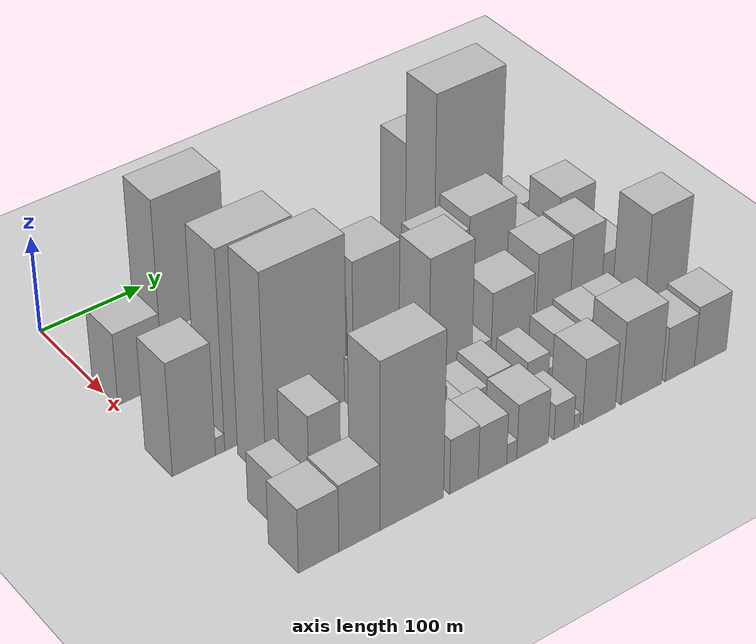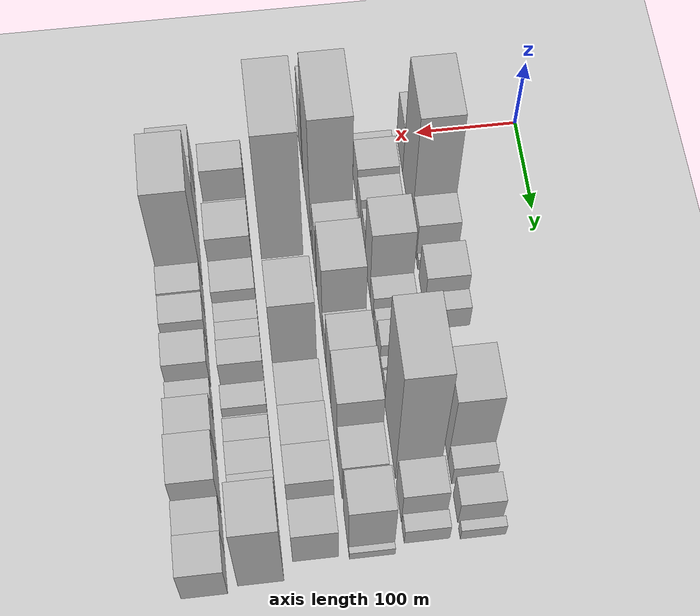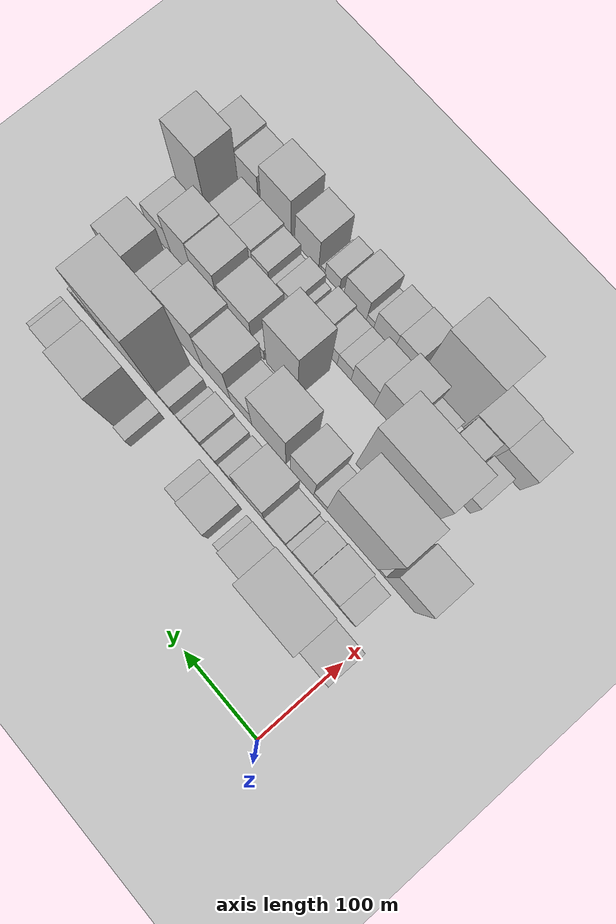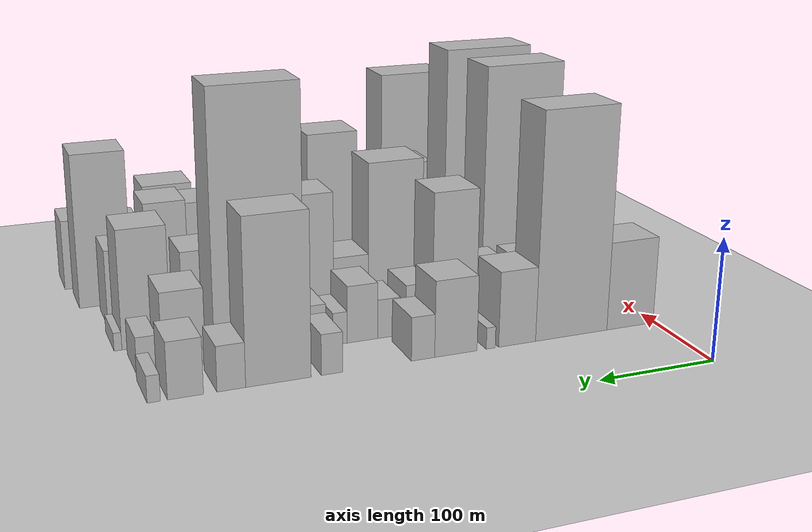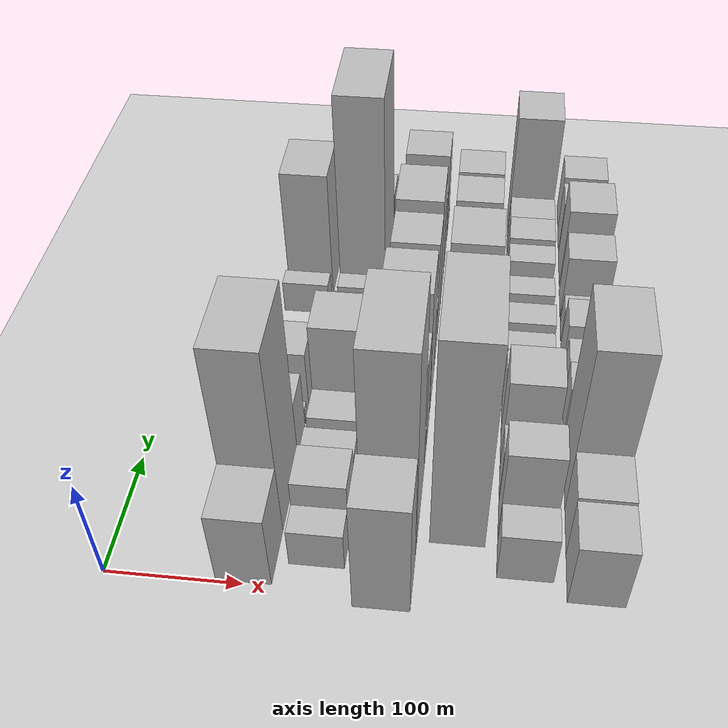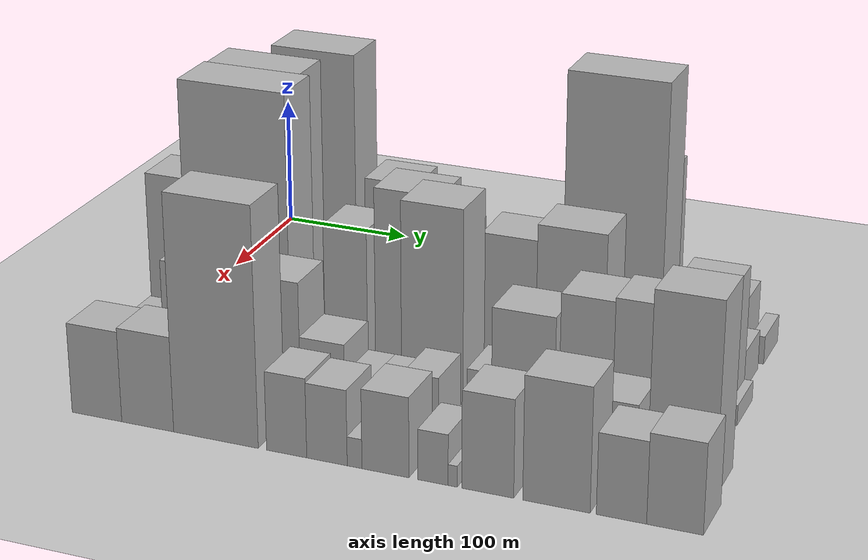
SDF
<sdf version="1.6">
 <world name="default">
  <include>
   <name>ground_plane_2</name>
   <uri>model://HANNAS_ground_plane</uri>
   <pose>100 0 0  0 0 0</pose>
  </include>
  <model name="building_25">
   <static>1</static>
   <pose>100.0000 23.4848 0 0.000000 0.000000 0.000000</pose>
   <link name="link">
    <pose>0 0 37.50 0 0 0</pose>
    <collision name="collision"><geometry><box><size>40.0000 43.8097 75.0000</size></box></geometry></collision>
    <visual name="visual">
     <cast_shadows>0</cast_shadows>
     <geometry><box><size>40.0000 43.8097 75.0000</size></box></geometry>
     <material>
      <script>
       <uri>model://HANNAS_wall/materials/scripts</uri>
       <uri>model://HANNAS_wall/materials/textures</uri>
       <name>vrc/HANNAS_wall</name>
      </script>
     </material>
    </visual>
   </link>
  </model>
  <model name="building_26">
   <static>1</static>
   <pose>100.0000 78.0372 0 0.000000 0.000000 0.000000</pose>
   <link name="link">
    <pose>0 0 94.50 0 0 0</pose>
    <collision name="collision"><geometry><box><size>40.0000 65.2951 189.0000</size></box></geometry></collision>
    <visual name="visual">
     <cast_shadows>0</cast_shadows>
     <geometry><box><size>40.0000 65.2951 189.0000</size></box></geometry>
     <material>
      <script>
       <uri>model://HANNAS_wall/materials/scripts</uri>
       <uri>model://HANNAS_wall/materials/textures</uri>
       <name>vrc/HANNAS_wall</name>
      </script>
     </material>
    </visual>
   </link>
  </model>
  <model name="building_27">
   <static>1</static>
   <pose>100.0000 127.0453 0 0.000000 0.000000 0.000000</pose>
   <link name="link">
    <pose>0 0 31.50 0 0 0</pose>
    <collision name="collision"><geometry><box><size>40.0000 32.7209 63.0000</size></box></geometry></collision>
    <visual name="visual">
     <cast_shadows>0</cast_shadows>
     <geometry><box><size>40.0000 32.7209 63.0000</size></box></geometry>
     <material>
      <script>
       <uri>model://HANNAS_wall/materials/scripts</uri>
       <uri>model://HANNAS_wall/materials/textures</uri>
       <name>vrc/HANNAS_wall</name>
      </script>
     </material>
    </visual>
   </link>
  </model>
  <model name="building_28">
   <static>1</static>
   <pose>100.0000 150.3238 0 0.000000 0.000000 0.000000</pose>
   <link name="link">
    <pose>0 0 9.00 0 0 0</pose>
    <collision name="collision"><geometry><box><size>40.0000 7.8362 18.0000</size></box></geometry></collision>
    <visual name="visual">
     <cast_shadows>0</cast_shadows>
     <geometry><box><size>40.0000 7.8362 18.0000</size></box></geometry>
     <material>
      <script>
       <uri>model://HANNAS_wall/materials/scripts</uri>
       <uri>model://HANNAS_wall/materials/textures</uri>
       <name>vrc/HANNAS_wall</name>
      </script>
     </material>
    </visual>
   </link>
  </model>
  <model name="building_29">
   <static>1</static>
   <pose>100.0000 180.3429 0 0.000000 0.000000 0.000000</pose>
   <link name="link">
    <pose>0 0 31.50 0 0 0</pose>
    <collision name="collision"><geometry><box><size>40.0000 36.2020 63.0000</size></box></geometry></collision>
    <visual name="visual">
     <cast_shadows>0</cast_shadows>
     <geometry><box><size>40.0000 36.2020 63.0000</size></box></geometry>
     <material>
      <script>
       <uri>model://HANNAS_wall/materials/scripts</uri>
       <uri>model://HANNAS_wall/materials/textures</uri>
       <name>vrc/HANNAS_wall</name>
      </script>
     </material>
    </visual>
   </link>
  </model>
  <model name="building_30">
   <static>1</static>
   <pose>100.0000 208.2000 0 0.000000 0.000000 0.000000</pose>
   <link name="link">
    <pose>0 0 18.00 0 0 0</pose>
    <collision name="collision"><geometry><box><size>40.0000 19.5122 36.0000</size></box></geometry></collision>
    <visual name="visual">
     <cast_shadows>0</cast_shadows>
     <geometry><box><size>40.0000 19.5122 36.0000</size></box></geometry>
     <material>
      <script>
       <uri>model://HANNAS_wall/materials/scripts</uri>
       <uri>model://HANNAS_wall/materials/textures</uri>
       <name>vrc/HANNAS_wall</name>
      </script>
     </material>
    </visual>
   </link>
  </model>
  <model name="building_31">
   <static>1</static>
   <pose>100.0000 282.5096 0 0.000000 0.000000 0.000000</pose>
   <link name="link">
    <pose>0 0 16.50 0 0 0</pose>
    <collision name="collision"><geometry><box><size>40.0000 17.0357 33.0000</size></box></geometry></collision>
    <visual name="visual">
     <cast_shadows>0</cast_shadows>
     <geometry><box><size>40.0000 17.0357 33.0000</size></box></geometry>
     <material>
      <script>
       <uri>model://HANNAS_wall/materials/scripts</uri>
       <uri>model://HANNAS_wall/materials/textures</uri>
       <name>vrc/HANNAS_wall</name>
      </script>
     </material>
    </visual>
   </link>
  </model>
  <model name="building_32">
   <static>1</static>
   <pose>100.0000 324.3097 0 0.000000 0.000000 0.000000</pose>
   <link name="link">
    <pose>0 0 66.00 0 0 0</pose>
    <collision name="collision"><geometry><box><size>40.0000 50.5646 132.0000</size></box></geometry></collision>
    <visual name="visual">
     <cast_shadows>0</cast_shadows>
     <geometry><box><size>40.0000 50.5646 132.0000</size></box></geometry>
     <material>
      <script>
       <uri>model://HANNAS_wall/materials/scripts</uri>
       <uri>model://HANNAS_wall/materials/textures</uri>
       <name>vrc/HANNAS_wall</name>
      </script>
     </material>
    </visual>
   </link>
  </model>
  <model name="building_33">
   <static>1</static>
   <pose>100.0000 360.3761 0 0.000000 0.000000 0.000000</pose>
   <link name="link">
    <pose>0 0 18.00 0 0 0</pose>
    <collision name="collision"><geometry><box><size>40.0000 21.5682 36.0000</size></box></geometry></collision>
    <visual name="visual">
     <cast_shadows>0</cast_shadows>
     <geometry><box><size>40.0000 21.5682 36.0000</size></box></geometry>
     <material>
      <script>
       <uri>model://HANNAS_wall/materials/scripts</uri>
       <uri>model://HANNAS_wall/materials/textures</uri>
       <name>vrc/HANNAS_wall</name>
      </script>
     </material>
    </visual>
   </link>
  </model>
  <model name="building_34">
   <static>1</static>
   <pose>100.0000 394.4054 0 0.000000 0.000000 0.000000</pose>
   <link name="link">
    <pose>0 0 22.50 0 0 0</pose>
    <collision name="collision"><geometry><box><size>40.0000 26.4903 45.0000</size></box></geometry></collision>
    <visual name="visual">
     <cast_shadows>0</cast_shadows>
     <geometry><box><size>40.0000 26.4903 45.0000</size></box></geometry>
     <material>
      <script>
       <uri>model://HANNAS_wall/materials/scripts</uri>
       <uri>model://HANNAS_wall/materials/textures</uri>
       <name>vrc/HANNAS_wall</name>
      </script>
     </material>
    </visual>
   </link>
  </model>
  <model name="building_35">
   <static>1</static>
   <pose>100.0000 417.4979 0 0.000000 0.000000 0.000000</pose>
   <link name="link">
    <pose>0 0 10.50 0 0 0</pose>
    <collision name="collision"><geometry><box><size>40.0000 9.6946 21.0000</size></box></geometry></collision>
    <visual name="visual">
     <cast_shadows>0</cast_shadows>
     <geometry><box><size>40.0000 9.6946 21.0000</size></box></geometry>
     <material>
      <script>
       <uri>model://HANNAS_wall/materials/scripts</uri>
       <uri>model://HANNAS_wall/materials/textures</uri>
       <name>vrc/HANNAS_wall</name>
      </script>
     </material>
    </visual>
   </link>
  </model>
  <model name="building_70">
   <static>1</static>
   <pose>149.0000 30.7093 0 0.000000 0.000000 0.000000</pose>
   <link name="link">
    <pose>0 0 19.50 0 0 0</pose>
    <collision name="collision"><geometry><box><size>40.0000 23.0490 39.0000</size></box></geometry></collision>
    <visual name="visual">
     <cast_shadows>0</cast_shadows>
     <geometry><box><size>40.0000 23.0490 39.0000</size></box></geometry>
     <material>
      <script>
       <uri>model://HANNAS_wall/materials/scripts</uri>
       <uri>model://HANNAS_wall/materials/textures</uri>
       <name>vrc/HANNAS_wall</name>
      </script>
     </material>
    </visual>
   </link>
  </model>
  <model name="building_71">
   <static>1</static>
   <pose>149.0000 59.3731 0 0.000000 0.000000 0.000000</pose>
   <link name="link">
    <pose>0 0 31.50 0 0 0</pose>
    <collision name="collision"><geometry><box><size>40.0000 34.2786 63.0000</size></box></geometry></collision>
    <visual name="visual">
     <cast_shadows>0</cast_shadows>
     <geometry><box><size>40.0000 34.2786 63.0000</size></box></geometry>
     <material>
      <script>
       <uri>model://HANNAS_wall/materials/scripts</uri>
       <uri>model://HANNAS_wall/materials/textures</uri>
       <name>vrc/HANNAS_wall</name>
      </script>
     </material>
    </visual>
   </link>
  </model>
  <model name="building_72">
   <static>1</static>
   <pose>149.0000 89.5207 0 0.000000 0.000000 0.000000</pose>
   <link name="link">
    <pose>0 0 25.50 0 0 0</pose>
    <collision name="collision"><geometry><box><size>40.0000 26.0166 51.0000</size></box></geometry></collision>
    <visual name="visual">
     <cast_shadows>0</cast_shadows>
     <geometry><box><size>40.0000 26.0166 51.0000</size></box></geometry>
     <material>
      <script>
       <uri>model://HANNAS_wall/materials/scripts</uri>
       <uri>model://HANNAS_wall/materials/textures</uri>
       <name>vrc/HANNAS_wall</name>
      </script>
     </material>
    </visual>
   </link>
  </model>
  <model name="building_73">
   <static>1</static>
   <pose>149.0000 106.8349 0 0.000000 0.000000 0.000000</pose>
   <link name="link">
    <pose>0 0 10.50 0 0 0</pose>
    <collision name="collision"><geometry><box><size>40.0000 8.6117 21.0000</size></box></geometry></collision>
    <visual name="visual">
     <cast_shadows>0</cast_shadows>
     <geometry><box><size>40.0000 8.6117 21.0000</size></box></geometry>
     <material>
      <script>
       <uri>model://HANNAS_wall/materials/scripts</uri>
       <uri>model://HANNAS_wall/materials/textures</uri>
       <name>vrc/HANNAS_wall</name>
      </script>
     </material>
    </visual>
   </link>
  </model>
  <model name="building_74">
   <static>1</static>
   <pose>149.0000 125.4040 0 0.000000 0.000000 0.000000</pose>
   <link name="link">
    <pose>0 0 25.50 0 0 0</pose>
    <collision name="collision"><geometry><box><size>40.0000 28.5265 51.0000</size></box></geometry></collision>
    <visual name="visual">
     <cast_shadows>0</cast_shadows>
     <geometry><box><size>40.0000 28.5265 51.0000</size></box></geometry>
     <material>
      <script>
       <uri>model://HANNAS_wall/materials/scripts</uri>
       <uri>model://HANNAS_wall/materials/textures</uri>
       <name>vrc/HANNAS_wall</name>
      </script>
     </material>
    </visual>
   </link>
  </model>
  <model name="building_75">
   <static>1</static>
   <pose>149.0000 159.4169 0 0.000000 0.000000 0.000000</pose>
   <link name="link">
    <pose>0 0 58.50 0 0 0</pose>
    <collision name="collision"><geometry><box><size>40.0000 39.4994 117.0000</size></box></geometry></collision>
    <visual name="visual">
     <cast_shadows>0</cast_shadows>
     <geometry><box><size>40.0000 39.4994 117.0000</size></box></geometry>
     <material>
      <script>
       <uri>model://HANNAS_wall/materials/scripts</uri>
       <uri>model://HANNAS_wall/materials/textures</uri>
       <name>vrc/HANNAS_wall</name>
      </script>
     </material>
    </visual>
   </link>
  </model>
  <model name="building_76">
   <static>1</static>
   <pose>149.0000 190.7859 0 0.000000 0.000000 0.000000</pose>
   <link name="link">
    <pose>0 0 21.00 0 0 0</pose>
    <collision name="collision"><geometry><box><size>40.0000 23.2386 42.0000</size></box></geometry></collision>
    <visual name="visual">
     <cast_shadows>0</cast_shadows>
     <geometry><box><size>40.0000 23.2386 42.0000</size></box></geometry>
     <material>
      <script>
       <uri>model://HANNAS_wall/materials/scripts</uri>
       <uri>model://HANNAS_wall/materials/textures</uri>
       <name>vrc/HANNAS_wall</name>
      </script>
     </material>
    </visual>
   </link>
  </model>
  <model name="building_77">
   <static>1</static>
   <pose>149.0000 217.1379 0 0.000000 0.000000 0.000000</pose>
   <link name="link">
    <pose>0 0 16.50 0 0 0</pose>
    <collision name="collision"><geometry><box><size>40.0000 19.4653 33.0000</size></box></geometry></collision>
    <visual name="visual">
     <cast_shadows>0</cast_shadows>
     <geometry><box><size>40.0000 19.4653 33.0000</size></box></geometry>
     <material>
      <script>
       <uri>model://HANNAS_wall/materials/scripts</uri>
       <uri>model://HANNAS_wall/materials/textures</uri>
       <name>vrc/HANNAS_wall</name>
      </script>
     </material>
    </visual>
   </link>
  </model>
  <model name="building_78">
   <static>1</static>
   <pose>149.0000 239.7814 0 0.000000 0.000000 0.000000</pose>
   <link name="link">
    <pose>0 0 24.00 0 0 0</pose>
    <collision name="collision"><geometry><box><size>40.0000 25.8217 48.0000</size></box></geometry></collision>
    <visual name="visual">
     <cast_shadows>0</cast_shadows>
     <geometry><box><size>40.0000 25.8217 48.0000</size></box></geometry>
     <material>
      <script>
       <uri>model://HANNAS_wall/materials/scripts</uri>
       <uri>model://HANNAS_wall/materials/textures</uri>
       <name>vrc/HANNAS_wall</name>
      </script>
     </material>
    </visual>
   </link>
  </model>
  <model name="building_79">
   <static>1</static>
   <pose>149.0000 258.7085 0 0.000000 0.000000 0.000000</pose>
   <link name="link">
    <pose>0 0 13.50 0 0 0</pose>
    <collision name="collision"><geometry><box><size>40.0000 12.0325 27.0000</size></box></geometry></collision>
    <visual name="visual">
     <cast_shadows>0</cast_shadows>
     <geometry><box><size>40.0000 12.0325 27.0000</size></box></geometry>
     <material>
      <script>
       <uri>model://HANNAS_wall/materials/scripts</uri>
       <uri>model://HANNAS_wall/materials/textures</uri>
       <name>vrc/HANNAS_wall</name>
      </script>
     </material>
    </visual>
   </link>
  </model>
  <model name="building_80">
   <static>1</static>
   <pose>149.0000 279.8060 0 0.000000 0.000000 0.000000</pose>
   <link name="link">
    <pose>0 0 18.00 0 0 0</pose>
    <collision name="collision"><geometry><box><size>40.0000 18.1626 36.0000</size></box></geometry></collision>
    <visual name="visual">
     <cast_shadows>0</cast_shadows>
     <geometry><box><size>40.0000 18.1626 36.0000</size></box></geometry>
     <material>
      <script>
       <uri>model://HANNAS_wall/materials/scripts</uri>
       <uri>model://HANNAS_wall/materials/textures</uri>
       <name>vrc/HANNAS_wall</name>
      </script>
     </material>
    </visual>
   </link>
  </model>
  <model name="building_81">
   <static>1</static>
   <pose>149.0000 324.8000 0 0.000000 0.000000 0.000000</pose>
   <link name="link">
    <pose>0 0 108.00 0 0 0</pose>
    <collision name="collision"><geometry><box><size>40.0000 71.8253 216.0000</size></box></geometry></collision>
    <visual name="visual">
     <cast_shadows>0</cast_shadows>
     <geometry><box><size>40.0000 71.8253 216.0000</size></box></geometry>
     <material>
      <script>
       <uri>model://HANNAS_wall/materials/scripts</uri>
       <uri>model://HANNAS_wall/materials/textures</uri>
       <name>vrc/HANNAS_wall</name>
      </script>
     </material>
    </visual>
   </link>
  </model>
  <model name="building_82">
   <static>1</static>
   <pose>149.0000 384.4470 0 0.000000 0.000000 0.000000</pose>
   <link name="link">
    <pose>0 0 31.50 0 0 0</pose>
    <collision name="collision"><geometry><box><size>40.0000 33.4687 63.0000</size></box></geometry></collision>
    <visual name="visual">
     <cast_shadows>0</cast_shadows>
     <geometry><box><size>40.0000 33.4687 63.0000</size></box></geometry>
     <material>
      <script>
       <uri>model://HANNAS_wall/materials/scripts</uri>
       <uri>model://HANNAS_wall/materials/textures</uri>
       <name>vrc/HANNAS_wall</name>
      </script>
     </material>
    </visual>
   </link>
  </model>
  <model name="building_83">
   <static>1</static>
   <pose>149.0000 412.3486 0 0.000000 0.000000 0.000000</pose>
   <link name="link">
    <pose>0 0 15.00 0 0 0</pose>
    <collision name="collision"><geometry><box><size>40.0000 16.3346 30.0000</size></box></geometry></collision>
    <visual name="visual">
     <cast_shadows>0</cast_shadows>
     <geometry><box><size>40.0000 16.3346 30.0000</size></box></geometry>
     <material>
      <script>
       <uri>model://HANNAS_wall/materials/scripts</uri>
       <uri>model://HANNAS_wall/materials/textures</uri>
       <name>vrc/HANNAS_wall</name>
      </script>
     </material>
    </visual>
   </link>
  </model>
  <model name="building_121">
   <static>1</static>
   <pose>198.0000 11.1942 0 0.000000 0.000000 0.000000</pose>
   <link name="link">
    <pose>0 0 58.50 0 0 0</pose>
    <collision name="collision"><geometry><box><size>40.0000 41.1194 117.0000</size></box></geometry></collision>
    <visual name="visual">
     <cast_shadows>0</cast_shadows>
     <geometry><box><size>40.0000 41.1194 117.0000</size></box></geometry>
     <material>
      <script>
       <uri>model://HANNAS_wall/materials/scripts</uri>
       <uri>model://HANNAS_wall/materials/textures</uri>
       <name>vrc/HANNAS_wall</name>
      </script>
     </material>
    </visual>
   </link>
  </model>
  <model name="building_122">
   <static>1</static>
   <pose>198.0000 36.1408 0 0.000000 0.000000 0.000000</pose>
   <link name="link">
    <pose>0 0 9.00 0 0 0</pose>
    <collision name="collision"><geometry><box><size>40.0000 8.7737 18.0000</size></box></geometry></collision>
    <visual name="visual">
     <cast_shadows>0</cast_shadows>
     <geometry><box><size>40.0000 8.7737 18.0000</size></box></geometry>
     <material>
      <script>
       <uri>model://HANNAS_wall/materials/scripts</uri>
       <uri>model://HANNAS_wall/materials/textures</uri>
       <name>vrc/HANNAS_wall</name>
      </script>
     </material>
    </visual>
   </link>
  </model>
  <model name="building_123">
   <static>1</static>
   <pose>198.0000 75.8968 0 0.000000 0.000000 0.000000</pose>
   <link name="link">
    <pose>0 0 102.00 0 0 0</pose>
    <collision name="collision"><geometry><box><size>40.0000 70.7382 204.0000</size></box></geometry></collision>
    <visual name="visual">
     <cast_shadows>0</cast_shadows>
     <geometry><box><size>40.0000 70.7382 204.0000</size></box></geometry>
     <material>
      <script>
       <uri>model://HANNAS_wall/materials/scripts</uri>
       <uri>model://HANNAS_wall/materials/textures</uri>
       <name>vrc/HANNAS_wall</name>
      </script>
     </material>
    </visual>
   </link>
  </model>
  <model name="building_124">
   <static>1</static>
   <pose>198.0000 120.1695 0 0.000000 0.000000 0.000000</pose>
   <link name="link">
    <pose>0 0 15.00 0 0 0</pose>
    <collision name="collision"><geometry><box><size>40.0000 17.8073 30.0000</size></box></geometry></collision>
    <visual name="visual">
     <cast_shadows>0</cast_shadows>
     <geometry><box><size>40.0000 17.8073 30.0000</size></box></geometry>
     <material>
      <script>
       <uri>model://HANNAS_wall/materials/scripts</uri>
       <uri>model://HANNAS_wall/materials/textures</uri>
       <name>vrc/HANNAS_wall</name>
      </script>
     </material>
    </visual>
   </link>
  </model>
  <model name="building_125">
   <static>1</static>
   <pose>198.0000 145.4455 0 0.000000 0.000000 0.000000</pose>
   <link name="link">
    <pose>0 0 49.50 0 0 0</pose>
    <collision name="collision"><geometry><box><size>40.0000 32.7446 99.0000</size></box></geometry></collision>
    <visual name="visual">
     <cast_shadows>0</cast_shadows>
     <geometry><box><size>40.0000 32.7446 99.0000</size></box></geometry>
     <material>
      <script>
       <uri>model://HANNAS_wall/materials/scripts</uri>
       <uri>model://HANNAS_wall/materials/textures</uri>
       <name>vrc/HANNAS_wall</name>
      </script>
     </material>
    </visual>
   </link>
  </model>
  <model name="building_126">
   <static>1</static>
   <pose>198.0000 192.0414 0 0.000000 0.000000 0.000000</pose>
   <link name="link">
    <pose>0 0 66.00 0 0 0</pose>
    <collision name="collision"><geometry><box><size>40.0000 48.4472 132.0000</size></box></geometry></collision>
    <visual name="visual">
     <cast_shadows>0</cast_shadows>
     <geometry><box><size>40.0000 48.4472 132.0000</size></box></geometry>
     <material>
      <script>
       <uri>model://HANNAS_wall/materials/scripts</uri>
       <uri>model://HANNAS_wall/materials/textures</uri>
       <name>vrc/HANNAS_wall</name>
      </script>
     </material>
    </visual>
   </link>
  </model>
  <model name="building_127">
   <static>1</static>
   <pose>198.0000 231.6323 0 0.000000 0.000000 0.000000</pose>
   <link name="link">
    <pose>0 0 27.00 0 0 0</pose>
    <collision name="collision"><geometry><box><size>40.0000 30.7347 54.0000</size></box></geometry></collision>
    <visual name="visual">
     <cast_shadows>0</cast_shadows>
     <geometry><box><size>40.0000 30.7347 54.0000</size></box></geometry>
     <material>
      <script>
       <uri>model://HANNAS_wall/materials/scripts</uri>
       <uri>model://HANNAS_wall/materials/textures</uri>
       <name>vrc/HANNAS_wall</name>
      </script>
     </material>
    </visual>
   </link>
  </model>
  <model name="building_128">
   <static>1</static>
   <pose>198.0000 266.8881 0 0.000000 0.000000 0.000000</pose>
   <link name="link">
    <pose>0 0 55.50 0 0 0</pose>
    <collision name="collision"><geometry><box><size>40.0000 39.7768 111.0000</size></box></geometry></collision>
    <visual name="visual">
     <cast_shadows>0</cast_shadows>
     <geometry><box><size>40.0000 39.7768 111.0000</size></box></geometry>
     <material>
      <script>
       <uri>model://HANNAS_wall/materials/scripts</uri>
       <uri>model://HANNAS_wall/materials/textures</uri>
       <name>vrc/HANNAS_wall</name>
      </script>
     </material>
    </visual>
   </link>
  </model>
  <model name="building_129">
   <static>1</static>
   <pose>198.0000 311.2770 0 0.000000 0.000000 0.000000</pose>
   <link name="link">
    <pose>0 0 61.50 0 0 0</pose>
    <collision name="collision"><geometry><box><size>40.0000 49.0011 123.0000</size></box></geometry></collision>
    <visual name="visual">
     <cast_shadows>0</cast_shadows>
     <geometry><box><size>40.0000 49.0011 123.0000</size></box></geometry>
     <material>
      <script>
       <uri>model://HANNAS_wall/materials/scripts</uri>
       <uri>model://HANNAS_wall/materials/textures</uri>
       <name>vrc/HANNAS_wall</name>
      </script>
     </material>
    </visual>
   </link>
  </model>
  <model name="building_130">
   <static>1</static>
   <pose>198.0000 354.9305 0 0.000000 0.000000 0.000000</pose>
   <link name="link">
    <pose>0 0 37.50 0 0 0</pose>
    <collision name="collision"><geometry><box><size>40.0000 38.3057 75.0000</size></box></geometry></collision>
    <visual name="visual">
     <cast_shadows>0</cast_shadows>
     <geometry><box><size>40.0000 38.3057 75.0000</size></box></geometry>
     <material>
      <script>
       <uri>model://HANNAS_wall/materials/scripts</uri>
       <uri>model://HANNAS_wall/materials/textures</uri>
       <name>vrc/HANNAS_wall</name>
      </script>
     </material>
    </visual>
   </link>
  </model>
  <model name="building_131">
   <static>1</static>
   <pose>198.0000 403.5818 0 0.000000 0.000000 0.000000</pose>
   <link name="link">
    <pose>0 0 49.50 0 0 0</pose>
    <collision name="collision"><geometry><box><size>40.0000 38.9970 99.0000</size></box></geometry></collision>
    <visual name="visual">
     <cast_shadows>0</cast_shadows>
     <geometry><box><size>40.0000 38.9970 99.0000</size></box></geometry>
     <material>
      <script>
       <uri>model://HANNAS_wall/materials/scripts</uri>
       <uri>model://HANNAS_wall/materials/textures</uri>
       <name>vrc/HANNAS_wall</name>
      </script>
     </material>
    </visual>
   </link>
  </model>
  <model name="building_132">
   <static>1</static>
   <pose>198.0000 426.1612 0 0.000000 0.000000 0.000000</pose>
   <link name="link">
    <pose>0 0 7.50 0 0 0</pose>
    <collision name="collision"><geometry><box><size>40.0000 6.1618 15.0000</size></box></geometry></collision>
    <visual name="visual">
     <cast_shadows>0</cast_shadows>
     <geometry><box><size>40.0000 6.1618 15.0000</size></box></geometry>
     <material>
      <script>
       <uri>model://HANNAS_wall/materials/scripts</uri>
       <uri>model://HANNAS_wall/materials/textures</uri>
       <name>vrc/HANNAS_wall</name>
      </script>
     </material>
    </visual>
   </link>
  </model>
  <model name="building_171">
   <static>1</static>
   <pose>247.0000 86.2292 0 0.000000 0.000000 0.000000</pose>
   <link name="link">
    <pose>0 0 105.00 0 0 0</pose>
    <collision name="collision"><geometry><box><size>40.0000 78.7573 210.0000</size></box></geometry></collision>
    <visual name="visual">
     <cast_shadows>0</cast_shadows>
     <geometry><box><size>40.0000 78.7573 210.0000</size></box></geometry>
     <material>
      <script>
       <uri>model://HANNAS_wall/materials/scripts</uri>
       <uri>model://HANNAS_wall/materials/textures</uri>
       <name>vrc/HANNAS_wall</name>
      </script>
     </material>
    </visual>
   </link>
  </model>
  <model name="building_172">
   <static>1</static>
   <pose>247.0000 230.4281 0 0.000000 0.000000 0.000000</pose>
   <link name="link">
    <pose>0 0 73.50 0 0 0</pose>
    <collision name="collision"><geometry><box><size>40.0000 44.5469 147.0000</size></box></geometry></collision>
    <visual name="visual">
     <cast_shadows>0</cast_shadows>
     <geometry><box><size>40.0000 44.5469 147.0000</size></box></geometry>
     <material>
      <script>
       <uri>model://HANNAS_wall/materials/scripts</uri>
       <uri>model://HANNAS_wall/materials/textures</uri>
       <name>vrc/HANNAS_wall</name>
      </script>
     </material>
    </visual>
   </link>
  </model>
  <model name="building_173">
   <static>1</static>
   <pose>247.0000 264.4018 0 0.000000 0.000000 0.000000</pose>
   <link name="link">
    <pose>0 0 16.50 0 0 0</pose>
    <collision name="collision"><geometry><box><size>40.0000 17.4004 33.0000</size></box></geometry></collision>
    <visual name="visual">
     <cast_shadows>0</cast_shadows>
     <geometry><box><size>40.0000 17.4004 33.0000</size></box></geometry>
     <material>
      <script>
       <uri>model://HANNAS_wall/materials/scripts</uri>
       <uri>model://HANNAS_wall/materials/textures</uri>
       <name>vrc/HANNAS_wall</name>
      </script>
     </material>
    </visual>
   </link>
  </model>
  <model name="building_174">
   <static>1</static>
   <pose>247.0000 295.3720 0 0.000000 0.000000 0.000000</pose>
   <link name="link">
    <pose>0 0 40.50 0 0 0</pose>
    <collision name="collision"><geometry><box><size>40.0000 44.5400 81.0000</size></box></geometry></collision>
    <visual name="visual">
     <cast_shadows>0</cast_shadows>
     <geometry><box><size>40.0000 44.5400 81.0000</size></box></geometry>
     <material>
      <script>
       <uri>model://HANNAS_wall/materials/scripts</uri>
       <uri>model://HANNAS_wall/materials/textures</uri>
       <name>vrc/HANNAS_wall</name>
      </script>
     </material>
    </visual>
   </link>
  </model>
  <model name="building_175">
   <static>1</static>
   <pose>247.0000 339.0831 0 0.000000 0.000000 0.000000</pose>
   <link name="link">
    <pose>0 0 49.50 0 0 0</pose>
    <collision name="collision"><geometry><box><size>40.0000 36.8821 99.0000</size></box></geometry></collision>
    <visual name="visual">
     <cast_shadows>0</cast_shadows>
     <geometry><box><size>40.0000 36.8821 99.0000</size></box></geometry>
     <material>
      <script>
       <uri>model://HANNAS_wall/materials/scripts</uri>
       <uri>model://HANNAS_wall/materials/textures</uri>
       <name>vrc/HANNAS_wall</name>
      </script>
     </material>
    </visual>
   </link>
  </model>
  <model name="building_176">
   <static>1</static>
   <pose>247.0000 374.9495 0 0.000000 0.000000 0.000000</pose>
   <link name="link">
    <pose>0 0 51.00 0 0 0</pose>
    <collision name="collision"><geometry><box><size>40.0000 34.8507 102.0000</size></box></geometry></collision>
    <visual name="visual">
     <cast_shadows>0</cast_shadows>
     <geometry><box><size>40.0000 34.8507 102.0000</size></box></geometry>
     <material>
      <script>
       <uri>model://HANNAS_wall/materials/scripts</uri>
       <uri>model://HANNAS_wall/materials/textures</uri>
       <name>vrc/HANNAS_wall</name>
      </script>
     </material>
    </visual>
   </link>
  </model>
  <model name="building_177">
   <static>1</static>
   <pose>247.0000 409.1112 0 0.000000 0.000000 0.000000</pose>
   <link name="link">
    <pose>0 0 33.00 0 0 0</pose>
    <collision name="collision"><geometry><box><size>40.0000 33.4727 66.0000</size></box></geometry></collision>
    <visual name="visual">
     <cast_shadows>0</cast_shadows>
     <geometry><box><size>40.0000 33.4727 66.0000</size></box></geometry>
     <material>
      <script>
       <uri>model://HANNAS_wall/materials/scripts</uri>
       <uri>model://HANNAS_wall/materials/textures</uri>
       <name>vrc/HANNAS_wall</name>
      </script>
     </material>
    </visual>
   </link>
  </model>
  <model name="building_214">
   <static>1</static>
   <pose>296.0000 36.5053 0 0.000000 0.000000 0.000000</pose>
   <link name="link">
    <pose>0 0 25.50 0 0 0</pose>
    <collision name="collision"><geometry><box><size>40.0000 26.9418 51.0000</size></box></geometry></collision>
    <visual name="visual">
     <cast_shadows>0</cast_shadows>
     <geometry><box><size>40.0000 26.9418 51.0000</size></box></geometry>
     <material>
      <script>
       <uri>model://HANNAS_wall/materials/scripts</uri>
       <uri>model://HANNAS_wall/materials/textures</uri>
       <name>vrc/HANNAS_wall</name>
      </script>
     </material>
    </visual>
   </link>
  </model>
  <model name="building_215">
   <static>1</static>
   <pose>296.0000 69.0502 0 0.000000 0.000000 0.000000</pose>
   <link name="link">
    <pose>0 0 49.50 0 0 0</pose>
    <collision name="collision"><geometry><box><size>40.0000 30.1478 99.0000</size></box></geometry></collision>
    <visual name="visual">
     <cast_shadows>0</cast_shadows>
     <geometry><box><size>40.0000 30.1478 99.0000</size></box></geometry>
     <material>
      <script>
       <uri>model://HANNAS_wall/materials/scripts</uri>
       <uri>model://HANNAS_wall/materials/textures</uri>
       <name>vrc/HANNAS_wall</name>
      </script>
     </material>
    </visual>
   </link>
  </model>
  <model name="building_216">
   <static>1</static>
   <pose>296.0000 102.7263 0 0.000000 0.000000 0.000000</pose>
   <link name="link">
    <pose>0 0 27.00 0 0 0</pose>
    <collision name="collision"><geometry><box><size>40.0000 29.2045 54.0000</size></box></geometry></collision>
    <visual name="visual">
     <cast_shadows>0</cast_shadows>
     <geometry><box><size>40.0000 29.2045 54.0000</size></box></geometry>
     <material>
      <script>
       <uri>model://HANNAS_wall/materials/scripts</uri>
       <uri>model://HANNAS_wall/materials/textures</uri>
       <name>vrc/HANNAS_wall</name>
      </script>
     </material>
    </visual>
   </link>
  </model>
  <model name="building_217">
   <static>1</static>
   <pose>296.0000 136.4684 0 0.000000 0.000000 0.000000</pose>
   <link name="link">
    <pose>0 0 49.50 0 0 0</pose>
    <collision name="collision"><geometry><box><size>40.0000 38.2796 99.0000</size></box></geometry></collision>
    <visual name="visual">
     <cast_shadows>0</cast_shadows>
     <geometry><box><size>40.0000 38.2796 99.0000</size></box></geometry>
     <material>
      <script>
       <uri>model://HANNAS_wall/materials/scripts</uri>
       <uri>model://HANNAS_wall/materials/textures</uri>
       <name>vrc/HANNAS_wall</name>
      </script>
     </material>
    </visual>
   </link>
  </model>
  <model name="building_218">
   <static>1</static>
   <pose>296.0000 171.7404 0 0.000000 0.000000 0.000000</pose>
   <link name="link">
    <pose>0 0 30.00 0 0 0</pose>
    <collision name="collision"><geometry><box><size>40.0000 32.2644 60.0000</size></box></geometry></collision>
    <visual name="visual">
     <cast_shadows>0</cast_shadows>
     <geometry><box><size>40.0000 32.2644 60.0000</size></box></geometry>
     <material>
      <script>
       <uri>model://HANNAS_wall/materials/scripts</uri>
       <uri>model://HANNAS_wall/materials/textures</uri>
       <name>vrc/HANNAS_wall</name>
      </script>
     </material>
    </visual>
   </link>
  </model>
  <model name="building_219">
   <static>1</static>
   <pose>296.0000 197.6749 0 0.000000 0.000000 0.000000</pose>
   <link name="link">
    <pose>0 0 19.50 0 0 0</pose>
    <collision name="collision"><geometry><box><size>40.0000 19.6047 39.0000</size></box></geometry></collision>
    <visual name="visual">
     <cast_shadows>0</cast_shadows>
     <geometry><box><size>40.0000 19.6047 39.0000</size></box></geometry>
     <material>
      <script>
       <uri>model://HANNAS_wall/materials/scripts</uri>
       <uri>model://HANNAS_wall/materials/textures</uri>
       <name>vrc/HANNAS_wall</name>
      </script>
     </material>
    </visual>
   </link>
  </model>
  <model name="building_220">
   <static>1</static>
   <pose>296.0000 218.6393 0 0.000000 0.000000 0.000000</pose>
   <link name="link">
    <pose>0 0 19.50 0 0 0</pose>
    <collision name="collision"><geometry><box><size>40.0000 22.3241 39.0000</size></box></geometry></collision>
    <visual name="visual">
     <cast_shadows>0</cast_shadows>
     <geometry><box><size>40.0000 22.3241 39.0000</size></box></geometry>
     <material>
      <script>
       <uri>model://HANNAS_wall/materials/scripts</uri>
       <uri>model://HANNAS_wall/materials/textures</uri>
       <name>vrc/HANNAS_wall</name>
      </script>
     </material>
    </visual>
   </link>
  </model>
  <model name="building_221">
   <static>1</static>
   <pose>296.0000 242.2071 0 0.000000 0.000000 0.000000</pose>
   <link name="link">
    <pose>0 0 24.00 0 0 0</pose>
    <collision name="collision"><geometry><box><size>40.0000 24.8115 48.0000</size></box></geometry></collision>
    <visual name="visual">
     <cast_shadows>0</cast_shadows>
     <geometry><box><size>40.0000 24.8115 48.0000</size></box></geometry>
     <material>
      <script>
       <uri>model://HANNAS_wall/materials/scripts</uri>
       <uri>model://HANNAS_wall/materials/textures</uri>
       <name>vrc/HANNAS_wall</name>
      </script>
     </material>
    </visual>
   </link>
  </model>
  <model name="building_222">
   <static>1</static>
   <pose>296.0000 266.8724 0 0.000000 0.000000 0.000000</pose>
   <link name="link">
    <pose>0 0 10.50 0 0 0</pose>
    <collision name="collision"><geometry><box><size>40.0000 8.5190 21.0000</size></box></geometry></collision>
    <visual name="visual">
     <cast_shadows>0</cast_shadows>
     <geometry><box><size>40.0000 8.5190 21.0000</size></box></geometry>
     <material>
      <script>
       <uri>model://HANNAS_wall/materials/scripts</uri>
       <uri>model://HANNAS_wall/materials/textures</uri>
       <name>vrc/HANNAS_wall</name>
      </script>
     </material>
    </visual>
   </link>
  </model>
  <model name="building_223">
   <static>1</static>
   <pose>296.0000 282.7065 0 0.000000 0.000000 0.000000</pose>
   <link name="link">
    <pose>0 0 21.00 0 0 0</pose>
    <collision name="collision"><geometry><box><size>40.0000 23.1492 42.0000</size></box></geometry></collision>
    <visual name="visual">
     <cast_shadows>0</cast_shadows>
     <geometry><box><size>40.0000 23.1492 42.0000</size></box></geometry>
     <material>
      <script>
       <uri>model://HANNAS_wall/materials/scripts</uri>
       <uri>model://HANNAS_wall/materials/textures</uri>
       <name>vrc/HANNAS_wall</name>
      </script>
     </material>
    </visual>
   </link>
  </model>
  <model name="building_224">
   <static>1</static>
   <pose>296.0000 300.1489 0 0.000000 0.000000 0.000000</pose>
   <link name="link">
    <pose>0 0 12.00 0 0 0</pose>
    <collision name="collision"><geometry><box><size>40.0000 11.7355 24.0000</size></box></geometry></collision>
    <visual name="visual">
     <cast_shadows>0</cast_shadows>
     <geometry><box><size>40.0000 11.7355 24.0000</size></box></geometry>
     <material>
      <script>
       <uri>model://HANNAS_wall/materials/scripts</uri>
       <uri>model://HANNAS_wall/materials/textures</uri>
       <name>vrc/HANNAS_wall</name>
      </script>
     </material>
    </visual>
   </link>
  </model>
  <model name="building_225">
   <static>1</static>
   <pose>296.0000 318.0288 0 0.000000 0.000000 0.000000</pose>
   <link name="link">
    <pose>0 0 24.00 0 0 0</pose>
    <collision name="collision"><geometry><box><size>40.0000 24.0243 48.0000</size></box></geometry></collision>
    <visual name="visual">
     <cast_shadows>0</cast_shadows>
     <geometry><box><size>40.0000 24.0243 48.0000</size></box></geometry>
     <material>
      <script>
       <uri>model://HANNAS_wall/materials/scripts</uri>
       <uri>model://HANNAS_wall/materials/textures</uri>
       <name>vrc/HANNAS_wall</name>
      </script>
     </material>
    </visual>
   </link>
  </model>
  <model name="building_226">
   <static>1</static>
   <pose>296.0000 345.1796 0 0.000000 0.000000 0.000000</pose>
   <link name="link">
    <pose>0 0 27.00 0 0 0</pose>
    <collision name="collision"><geometry><box><size>40.0000 30.2773 54.0000</size></box></geometry></collision>
    <visual name="visual">
     <cast_shadows>0</cast_shadows>
     <geometry><box><size>40.0000 30.2773 54.0000</size></box></geometry>
     <material>
      <script>
       <uri>model://HANNAS_wall/materials/scripts</uri>
       <uri>model://HANNAS_wall/materials/textures</uri>
       <name>vrc/HANNAS_wall</name>
      </script>
     </material>
    </visual>
   </link>
  </model>
  <model name="building_227">
   <static>1</static>
   <pose>296.0000 375.0159 0 0.000000 0.000000 0.000000</pose>
   <link name="link">
    <pose>0 0 27.00 0 0 0</pose>
    <collision name="collision"><geometry><box><size>40.0000 29.3953 54.0000</size></box></geometry></collision>
    <visual name="visual">
     <cast_shadows>0</cast_shadows>
     <geometry><box><size>40.0000 29.3953 54.0000</size></box></geometry>
     <material>
      <script>
       <uri>model://HANNAS_wall/materials/scripts</uri>
       <uri>model://HANNAS_wall/materials/textures</uri>
       <name>vrc/HANNAS_wall</name>
      </script>
     </material>
    </visual>
   </link>
  </model>
  <model name="building_228">
   <static>1</static>
   <pose>296.0000 419.3037 0 0.000000 0.000000 0.000000</pose>
   <link name="link">
    <pose>0 0 67.50 0 0 0</pose>
    <collision name="collision"><geometry><box><size>40.0000 45.1804 135.0000</size></box></geometry></collision>
    <visual name="visual">
     <cast_shadows>0</cast_shadows>
     <geometry><box><size>40.0000 45.1804 135.0000</size></box></geometry>
     <material>
      <script>
       <uri>model://HANNAS_wall/materials/scripts</uri>
       <uri>model://HANNAS_wall/materials/textures</uri>
       <name>vrc/HANNAS_wall</name>
      </script>
     </material>
    </visual>
   </link>
  </model>
  <model name="building_265">
   <static>1</static>
   <pose>345.0000 27.6570 0 0.000000 0.000000 0.000000</pose>
   <link name="link">
    <pose>0 0 33.00 0 0 0</pose>
    <collision name="collision"><geometry><box><size>40.0000 37.8616 66.0000</size></box></geometry></collision>
    <visual name="visual">
     <cast_shadows>0</cast_shadows>
     <geometry><box><size>40.0000 37.8616 66.0000</size></box></geometry>
     <material>
      <script>
       <uri>model://HANNAS_wall/materials/scripts</uri>
       <uri>model://HANNAS_wall/materials/textures</uri>
       <name>vrc/HANNAS_wall</name>
      </script>
     </material>
    </visual>
   </link>
  </model>
  <model name="building_266">
   <static>1</static>
   <pose>345.0000 66.0776 0 0.000000 0.000000 0.000000</pose>
   <link name="link">
    <pose>0 0 34.50 0 0 0</pose>
    <collision name="collision"><geometry><box><size>40.0000 38.9797 69.0000</size></box></geometry></collision>
    <visual name="visual">
     <cast_shadows>0</cast_shadows>
     <geometry><box><size>40.0000 38.9797 69.0000</size></box></geometry>
     <material>
      <script>
       <uri>model://HANNAS_wall/materials/scripts</uri>
       <uri>model://HANNAS_wall/materials/textures</uri>
       <name>vrc/HANNAS_wall</name>
      </script>
     </material>
    </visual>
   </link>
  </model>
  <model name="building_267">
   <static>1</static>
   <pose>345.0000 116.6038 0 0.000000 0.000000 0.000000</pose>
   <link name="link">
    <pose>0 0 85.50 0 0 0</pose>
    <collision name="collision"><geometry><box><size>40.0000 62.0728 171.0000</size></box></geometry></collision>
    <visual name="visual">
     <cast_shadows>0</cast_shadows>
     <geometry><box><size>40.0000 62.0728 171.0000</size></box></geometry>
     <material>
      <script>
       <uri>model://HANNAS_wall/materials/scripts</uri>
       <uri>model://HANNAS_wall/materials/textures</uri>
       <name>vrc/HANNAS_wall</name>
      </script>
     </material>
    </visual>
   </link>
  </model>
  <model name="building_268">
   <static>1</static>
   <pose>345.0000 168.0302 0 0.000000 0.000000 0.000000</pose>
   <link name="link">
    <pose>0 0 28.50 0 0 0</pose>
    <collision name="collision"><geometry><box><size>40.0000 28.7799 57.0000</size></box></geometry></collision>
    <visual name="visual">
     <cast_shadows>0</cast_shadows>
     <geometry><box><size>40.0000 28.7799 57.0000</size></box></geometry>
     <material>
      <script>
       <uri>model://HANNAS_wall/materials/scripts</uri>
       <uri>model://HANNAS_wall/materials/textures</uri>
       <name>vrc/HANNAS_wall</name>
      </script>
     </material>
    </visual>
   </link>
  </model>
  <model name="building_269">
   <static>1</static>
   <pose>345.0000 196.7356 0 0.000000 0.000000 0.000000</pose>
   <link name="link">
    <pose>0 0 27.00 0 0 0</pose>
    <collision name="collision"><geometry><box><size>40.0000 28.6309 54.0000</size></box></geometry></collision>
    <visual name="visual">
     <cast_shadows>0</cast_shadows>
     <geometry><box><size>40.0000 28.6309 54.0000</size></box></geometry>
     <material>
      <script>
       <uri>model://HANNAS_wall/materials/scripts</uri>
       <uri>model://HANNAS_wall/materials/textures</uri>
       <name>vrc/HANNAS_wall</name>
      </script>
     </material>
    </visual>
   </link>
  </model>
  <model name="building_270">
   <static>1</static>
   <pose>345.0000 216.2197 0 0.000000 0.000000 0.000000</pose>
   <link name="link">
    <pose>0 0 10.50 0 0 0</pose>
    <collision name="collision"><geometry><box><size>40.0000 10.3374 21.0000</size></box></geometry></collision>
    <visual name="visual">
     <cast_shadows>0</cast_shadows>
     <geometry><box><size>40.0000 10.3374 21.0000</size></box></geometry>
     <material>
      <script>
       <uri>model://HANNAS_wall/materials/scripts</uri>
       <uri>model://HANNAS_wall/materials/textures</uri>
       <name>vrc/HANNAS_wall</name>
      </script>
     </material>
    </visual>
   </link>
  </model>
  <model name="building_271">
   <static>1</static>
   <pose>345.0000 237.6964 0 0.000000 0.000000 0.000000</pose>
   <link name="link">
    <pose>0 0 28.50 0 0 0</pose>
    <collision name="collision"><geometry><box><size>40.0000 32.6161 57.0000</size></box></geometry></collision>
    <visual name="visual">
     <cast_shadows>0</cast_shadows>
     <geometry><box><size>40.0000 32.6161 57.0000</size></box></geometry>
     <material>
      <script>
       <uri>model://HANNAS_wall/materials/scripts</uri>
       <uri>model://HANNAS_wall/materials/textures</uri>
       <name>vrc/HANNAS_wall</name>
      </script>
     </material>
    </visual>
   </link>
  </model>
  <model name="building_272">
   <static>1</static>
   <pose>345.0000 270.4014 0 0.000000 0.000000 0.000000</pose>
   <link name="link">
    <pose>0 0 18.00 0 0 0</pose>
    <collision name="collision"><geometry><box><size>40.0000 20.7939 36.0000</size></box></geometry></collision>
    <visual name="visual">
     <cast_shadows>0</cast_shadows>
     <geometry><box><size>40.0000 20.7939 36.0000</size></box></geometry>
     <material>
      <script>
       <uri>model://HANNAS_wall/materials/scripts</uri>
       <uri>model://HANNAS_wall/materials/textures</uri>
       <name>vrc/HANNAS_wall</name>
      </script>
     </material>
    </visual>
   </link>
  </model>
  <model name="building_273">
   <static>1</static>
   <pose>345.0000 283.9143 0 0.000000 0.000000 0.000000</pose>
   <link name="link">
    <pose>0 0 7.50 0 0 0</pose>
    <collision name="collision"><geometry><box><size>40.0000 6.2319 15.0000</size></box></geometry></collision>
    <visual name="visual">
     <cast_shadows>0</cast_shadows>
     <geometry><box><size>40.0000 6.2319 15.0000</size></box></geometry>
     <material>
      <script>
       <uri>model://HANNAS_wall/materials/scripts</uri>
       <uri>model://HANNAS_wall/materials/textures</uri>
       <name>vrc/HANNAS_wall</name>
      </script>
     </material>
    </visual>
   </link>
  </model>
  <model name="building_274">
   <static>1</static>
   <pose>345.0000 307.4750 0 0.000000 0.000000 0.000000</pose>
   <link name="link">
    <pose>0 0 34.50 0 0 0</pose>
    <collision name="collision"><geometry><box><size>40.0000 34.8895 69.0000</size></box></geometry></collision>
    <visual name="visual">
     <cast_shadows>0</cast_shadows>
     <geometry><box><size>40.0000 34.8895 69.0000</size></box></geometry>
     <material>
      <script>
       <uri>model://HANNAS_wall/materials/scripts</uri>
       <uri>model://HANNAS_wall/materials/textures</uri>
       <name>vrc/HANNAS_wall</name>
      </script>
     </material>
    </visual>
   </link>
  </model>
  <model name="building_275">
   <static>1</static>
   <pose>345.0000 353.0456 0 0.000000 0.000000 0.000000</pose>
   <link name="link">
    <pose>0 0 43.50 0 0 0</pose>
    <collision name="collision"><geometry><box><size>40.0000 44.2518 87.0000</size></box></geometry></collision>
    <visual name="visual">
     <cast_shadows>0</cast_shadows>
     <geometry><box><size>40.0000 44.2518 87.0000</size></box></geometry>
     <material>
      <script>
       <uri>model://HANNAS_wall/materials/scripts</uri>
       <uri>model://HANNAS_wall/materials/textures</uri>
       <name>vrc/HANNAS_wall</name>
      </script>
     </material>
    </visual>
   </link>
  </model>
  <model name="building_276">
   <static>1</static>
   <pose>345.0000 395.3772 0 0.000000 0.000000 0.000000</pose>
   <link name="link">
    <pose>0 0 28.50 0 0 0</pose>
    <collision name="collision"><geometry><box><size>40.0000 32.4113 57.0000</size></box></geometry></collision>
    <visual name="visual">
     <cast_shadows>0</cast_shadows>
     <geometry><box><size>40.0000 32.4113 57.0000</size></box></geometry>
     <material>
      <script>
       <uri>model://HANNAS_wall/materials/scripts</uri>
       <uri>model://HANNAS_wall/materials/textures</uri>
       <name>vrc/HANNAS_wall</name>
      </script>
     </material>
    </visual>
   </link>
  </model>
  <model name="building_277">
   <static>1</static>
   <pose>345.0000 429.5792 0 0.000000 0.000000 0.000000</pose>
   <link name="link">
    <pose>0 0 31.50 0 0 0</pose>
    <collision name="collision"><geometry><box><size>40.0000 35.9926 63.0000</size></box></geometry></collision>
    <visual name="visual">
     <cast_shadows>0</cast_shadows>
     <geometry><box><size>40.0000 35.9926 63.0000</size></box></geometry>
     <material>
      <script>
       <uri>model://HANNAS_wall/materials/scripts</uri>
       <uri>model://HANNAS_wall/materials/textures</uri>
       <name>vrc/HANNAS_wall</name>
      </script>
     </material>
    </visual>
   </link>
  </model>
 </world>
</sdf>
